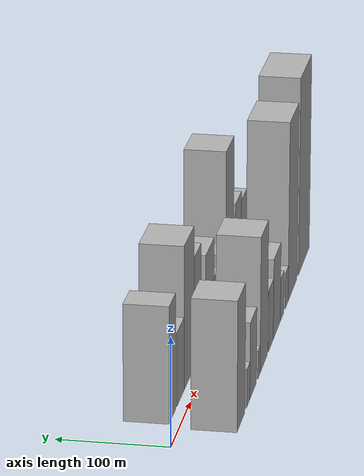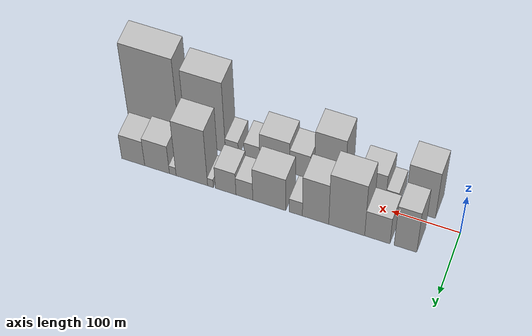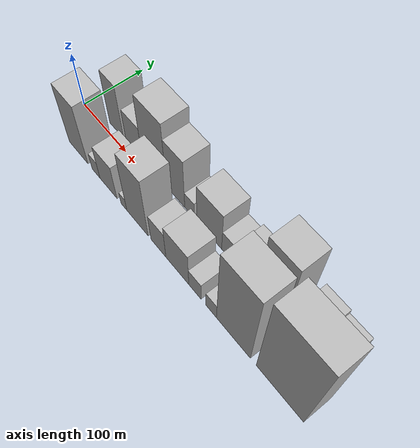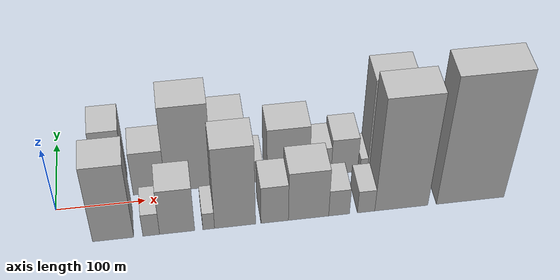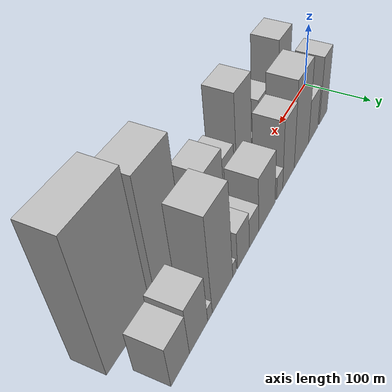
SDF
<sdf version="1.6">
 <world name="default">
  <scene>
   <sky><clouds><speed>12</speed></clouds></sky>
   <ambient>0.4 0.4 0.4 1</ambient>
   <background>0.7 0.7 0.7 1</background>
   <shadows>1</shadows>
  </scene>
  <gravity>0 0 -9.8066</gravity>
  <magnetic_field>6e-06 2.3e-05 -4.2e-05</magnetic_field>
  <physics default="0" name="default_physics" type="ode">
   <ode>
    <solver>
     <type>quick</type>
     <iters>10</iters>
     <sor>1.0</sor>
     <use_dynamic_moi_rescaling>0</use_dynamic_moi_rescaling>
    </solver>
    <constraints>
     <cfm>0</cfm>
     <erp>0.2</erp>
     <contact_max_correcting_vel>100</contact_max_correcting_vel>
     <contact_surface_layer>0.001</contact_surface_layer>
    </constraints>
   </ode>
   <max_step_size>0.004</max_step_size>
   <real_time_factor>1</real_time_factor>
   <real_time_update_rate>250</real_time_update_rate>
  </physics>
  <light name="sun" type="directional">
   <pose>0 0 10 0 0 0</pose>
   <diffuse>0.8 0.8 0.8 1</diffuse>
   <specular>0.2 0.2 0.2 1</specular>
   <attenuation>
    <range>1000</range>
    <constant>0.9</constant>
    <linear>0.01</linear>
    <quadratic>0.001</quadratic>
   </attenuation>
   <direction>-0.5 0.1 -0.9</direction>
  </light>
  <model name="building_1">
   <static>1</static>
   <pose>64.3956 30.0000 0 0.000000 0.000000 1.570796</pose>
   <link name="link">
    <pose>0 0 54.00 0 0 0</pose>
    <collision name="collision"><geometry><box><size>40.0000 32.7913 108.0000</size></box></geometry></collision>
    <visual name="visual">
     <cast_shadows>0</cast_shadows>
     <geometry><box><size>40.0000 32.7913 108.0000</size></box></geometry>
     <material>
      <script>
       <uri>model://HANNAS_wall/materials/scripts</uri>
       <uri>model://HANNAS_wall/materials/textures</uri>
       <name>vrc/HANNAS_wall</name>
      </script>
     </material>
    </visual>
   </link>
  </model>
  <model name="building_2">
   <static>1</static>
   <pose>105.2554 30.0000 0 0.000000 0.000000 1.570796</pose>
   <link name="link">
    <pose>0 0 34.50 0 0 0</pose>
    <collision name="collision"><geometry><box><size>40.0000 36.9283 69.0000</size></box></geometry></collision>
    <visual name="visual">
     <cast_shadows>0</cast_shadows>
     <geometry><box><size>40.0000 36.9283 69.0000</size></box></geometry>
     <material>
      <script>
       <uri>model://HANNAS_wall/materials/scripts</uri>
       <uri>model://HANNAS_wall/materials/textures</uri>
       <name>vrc/HANNAS_wall</name>
      </script>
     </material>
    </visual>
   </link>
  </model>
  <model name="building_3">
   <static>1</static>
   <pose>150.1064 30.0000 0 0.000000 0.000000 1.570796</pose>
   <link name="link">
    <pose>0 0 67.50 0 0 0</pose>
    <collision name="collision"><geometry><box><size>40.0000 52.7737 135.0000</size></box></geometry></collision>
    <visual name="visual">
     <cast_shadows>0</cast_shadows>
     <geometry><box><size>40.0000 52.7737 135.0000</size></box></geometry>
     <material>
      <script>
       <uri>model://HANNAS_wall/materials/scripts</uri>
       <uri>model://HANNAS_wall/materials/textures</uri>
       <name>vrc/HANNAS_wall</name>
      </script>
     </material>
    </visual>
   </link>
  </model>
  <model name="building_4">
   <static>1</static>
   <pose>195.9589 30.0000 0 0.000000 0.000000 1.570796</pose>
   <link name="link">
    <pose>0 0 52.50 0 0 0</pose>
    <collision name="collision"><geometry><box><size>40.0000 38.9315 105.0000</size></box></geometry></collision>
    <visual name="visual">
     <cast_shadows>0</cast_shadows>
     <geometry><box><size>40.0000 38.9315 105.0000</size></box></geometry>
     <material>
      <script>
       <uri>model://HANNAS_wall/materials/scripts</uri>
       <uri>model://HANNAS_wall/materials/textures</uri>
       <name>vrc/HANNAS_wall</name>
      </script>
     </material>
    </visual>
   </link>
  </model>
  <model name="building_5">
   <static>1</static>
   <pose>225.2437 30.0000 0 0.000000 0.000000 1.570796</pose>
   <link name="link">
    <pose>0 0 18.00 0 0 0</pose>
    <collision name="collision"><geometry><box><size>40.0000 19.6381 36.0000</size></box></geometry></collision>
    <visual name="visual">
     <cast_shadows>0</cast_shadows>
     <geometry><box><size>40.0000 19.6381 36.0000</size></box></geometry>
     <material>
      <script>
       <uri>model://HANNAS_wall/materials/scripts</uri>
       <uri>model://HANNAS_wall/materials/textures</uri>
       <name>vrc/HANNAS_wall</name>
      </script>
     </material>
    </visual>
   </link>
  </model>
  <model name="building_6">
   <static>1</static>
   <pose>264.6774 30.0000 0 0.000000 0.000000 1.570796</pose>
   <link name="link">
    <pose>0 0 42.00 0 0 0</pose>
    <collision name="collision"><geometry><box><size>40.0000 49.2292 84.0000</size></box></geometry></collision>
    <visual name="visual">
     <cast_shadows>0</cast_shadows>
     <geometry><box><size>40.0000 49.2292 84.0000</size></box></geometry>
     <material>
      <script>
       <uri>model://HANNAS_wall/materials/scripts</uri>
       <uri>model://HANNAS_wall/materials/textures</uri>
       <name>vrc/HANNAS_wall</name>
      </script>
     </material>
    </visual>
   </link>
  </model>
  <model name="building_7">
   <static>1</static>
   <pose>301.9560 30.0000 0 0.000000 0.000000 1.570796</pose>
   <link name="link">
    <pose>0 0 22.50 0 0 0</pose>
    <collision name="collision"><geometry><box><size>40.0000 25.3280 45.0000</size></box></geometry></collision>
    <visual name="visual">
     <cast_shadows>0</cast_shadows>
     <geometry><box><size>40.0000 25.3280 45.0000</size></box></geometry>
     <material>
      <script>
       <uri>model://HANNAS_wall/materials/scripts</uri>
       <uri>model://HANNAS_wall/materials/textures</uri>
       <name>vrc/HANNAS_wall</name>
      </script>
     </material>
    </visual>
   </link>
  </model>
  <model name="building_8">
   <static>1</static>
   <pose>330.1537 30.0000 0 0.000000 0.000000 1.570796</pose>
   <link name="link">
    <pose>0 0 28.50 0 0 0</pose>
    <collision name="collision"><geometry><box><size>40.0000 31.0674 57.0000</size></box></geometry></collision>
    <visual name="visual">
     <cast_shadows>0</cast_shadows>
     <geometry><box><size>40.0000 31.0674 57.0000</size></box></geometry>
     <material>
      <script>
       <uri>model://HANNAS_wall/materials/scripts</uri>
       <uri>model://HANNAS_wall/materials/textures</uri>
       <name>vrc/HANNAS_wall</name>
      </script>
     </material>
    </visual>
   </link>
  </model>
  <model name="building_9">
   <static>1</static>
   <pose>353.0845 30.0000 0 0.000000 0.000000 1.570796</pose>
   <link name="link">
    <pose>0 0 10.50 0 0 0</pose>
    <collision name="collision"><geometry><box><size>40.0000 8.7943 21.0000</size></box></geometry></collision>
    <visual name="visual">
     <cast_shadows>0</cast_shadows>
     <geometry><box><size>40.0000 8.7943 21.0000</size></box></geometry>
     <material>
      <script>
       <uri>model://HANNAS_wall/materials/scripts</uri>
       <uri>model://HANNAS_wall/materials/textures</uri>
       <name>vrc/HANNAS_wall</name>
      </script>
     </material>
    </visual>
   </link>
  </model>
  <model name="building_10">
   <static>1</static>
   <pose>381.4194 30.0000 0 0.000000 0.000000 1.570796</pose>
   <link name="link">
    <pose>0 0 72.00 0 0 0</pose>
    <collision name="collision"><geometry><box><size>40.0000 47.8754 144.0000</size></box></geometry></collision>
    <visual name="visual">
     <cast_shadows>0</cast_shadows>
     <geometry><box><size>40.0000 47.8754 144.0000</size></box></geometry>
     <material>
      <script>
       <uri>model://HANNAS_wall/materials/scripts</uri>
       <uri>model://HANNAS_wall/materials/textures</uri>
       <name>vrc/HANNAS_wall</name>
      </script>
     </material>
    </visual>
   </link>
  </model>
  <model name="building_11">
   <static>1</static>
   <pose>410.4542 30.0000 0 0.000000 0.000000 1.570796</pose>
   <link name="link">
    <pose>0 0 10.50 0 0 0</pose>
    <collision name="collision"><geometry><box><size>40.0000 10.1942 21.0000</size></box></geometry></collision>
    <visual name="visual">
     <cast_shadows>0</cast_shadows>
     <geometry><box><size>40.0000 10.1942 21.0000</size></box></geometry>
     <material>
      <script>
       <uri>model://HANNAS_wall/materials/scripts</uri>
       <uri>model://HANNAS_wall/materials/textures</uri>
       <name>vrc/HANNAS_wall</name>
      </script>
     </material>
    </visual>
   </link>
  </model>
  <model name="building_12">
   <static>1</static>
   <pose>434.4911 30.0000 0 0.000000 0.000000 1.570796</pose>
   <link name="link">
    <pose>0 0 36.00 0 0 0</pose>
    <collision name="collision"><geometry><box><size>40.0000 37.8795 72.0000</size></box></geometry></collision>
    <visual name="visual">
     <cast_shadows>0</cast_shadows>
     <geometry><box><size>40.0000 37.8795 72.0000</size></box></geometry>
     <material>
      <script>
       <uri>model://HANNAS_wall/materials/scripts</uri>
       <uri>model://HANNAS_wall/materials/textures</uri>
       <name>vrc/HANNAS_wall</name>
      </script>
     </material>
    </visual>
   </link>
  </model>
  <model name="building_13">
   <static>1</static>
   <pose>471.1069 30.0000 0 0.000000 0.000000 1.570796</pose>
   <link name="link">
    <pose>0 0 31.50 0 0 0</pose>
    <collision name="collision"><geometry><box><size>40.0000 35.3521 63.0000</size></box></geometry></collision>
    <visual name="visual">
     <cast_shadows>0</cast_shadows>
     <geometry><box><size>40.0000 35.3521 63.0000</size></box></geometry>
     <material>
      <script>
       <uri>model://HANNAS_wall/materials/scripts</uri>
       <uri>model://HANNAS_wall/materials/textures</uri>
       <name>vrc/HANNAS_wall</name>
      </script>
     </material>
    </visual>
   </link>
  </model>
  <model name="building_14">
   <static>1</static>
   <pose>62.3810 -30.0000 0 0.000000 0.000000 1.570796</pose>
   <link name="link">
    <pose>0 0 60.00 0 0 0</pose>
    <collision name="collision"><geometry><box><size>40.0000 44.7620 120.0000</size></box></geometry></collision>
    <visual name="visual">
     <cast_shadows>0</cast_shadows>
     <geometry><box><size>40.0000 44.7620 120.0000</size></box></geometry>
     <material>
      <script>
       <uri>model://HANNAS_wall/materials/scripts</uri>
       <uri>model://HANNAS_wall/materials/textures</uri>
       <name>vrc/HANNAS_wall</name>
      </script>
     </material>
    </visual>
   </link>
  </model>
  <model name="building_15">
   <static>1</static>
   <pose>103.9170 -30.0000 0 0.000000 0.000000 1.570796</pose>
   <link name="link">
    <pose>0 0 18.00 0 0 0</pose>
    <collision name="collision"><geometry><box><size>40.0000 18.3100 36.0000</size></box></geometry></collision>
    <visual name="visual">
     <cast_shadows>0</cast_shadows>
     <geometry><box><size>40.0000 18.3100 36.0000</size></box></geometry>
     <material>
      <script>
       <uri>model://HANNAS_wall/materials/scripts</uri>
       <uri>model://HANNAS_wall/materials/textures</uri>
       <name>vrc/HANNAS_wall</name>
      </script>
     </material>
    </visual>
   </link>
  </model>
  <model name="building_16">
   <static>1</static>
   <pose>132.3767 -30.0000 0 0.000000 0.000000 1.570796</pose>
   <link name="link">
    <pose>0 0 36.00 0 0 0</pose>
    <collision name="collision"><geometry><box><size>40.0000 38.6094 72.0000</size></box></geometry></collision>
    <visual name="visual">
     <cast_shadows>0</cast_shadows>
     <geometry><box><size>40.0000 38.6094 72.0000</size></box></geometry>
     <material>
      <script>
       <uri>model://HANNAS_wall/materials/scripts</uri>
       <uri>model://HANNAS_wall/materials/textures</uri>
       <name>vrc/HANNAS_wall</name>
      </script>
     </material>
    </visual>
   </link>
  </model>
  <model name="building_17">
   <static>1</static>
   <pose>167.1080 -30.0000 0 0.000000 0.000000 1.570796</pose>
   <link name="link">
    <pose>0 0 13.50 0 0 0</pose>
    <collision name="collision"><geometry><box><size>40.0000 12.8532 27.0000</size></box></geometry></collision>
    <visual name="visual">
     <cast_shadows>0</cast_shadows>
     <geometry><box><size>40.0000 12.8532 27.0000</size></box></geometry>
     <material>
      <script>
       <uri>model://HANNAS_wall/materials/scripts</uri>
       <uri>model://HANNAS_wall/materials/textures</uri>
       <name>vrc/HANNAS_wall</name>
      </script>
     </material>
    </visual>
   </link>
  </model>
  <model name="building_18">
   <static>1</static>
   <pose>196.3711 -30.0000 0 0.000000 0.000000 1.570796</pose>
   <link name="link">
    <pose>0 0 64.50 0 0 0</pose>
    <collision name="collision"><geometry><box><size>40.0000 45.6732 129.0000</size></box></geometry></collision>
    <visual name="visual">
     <cast_shadows>0</cast_shadows>
     <geometry><box><size>40.0000 45.6732 129.0000</size></box></geometry>
     <material>
      <script>
       <uri>model://HANNAS_wall/materials/scripts</uri>
       <uri>model://HANNAS_wall/materials/textures</uri>
       <name>vrc/HANNAS_wall</name>
      </script>
     </material>
    </visual>
   </link>
  </model>
  <model name="building_19">
   <static>1</static>
   <pose>240.5587 -30.0000 0 0.000000 0.000000 1.570796</pose>
   <link name="link">
    <pose>0 0 30.00 0 0 0</pose>
    <collision name="collision"><geometry><box><size>40.0000 30.7020 60.0000</size></box></geometry></collision>
    <visual name="visual">
     <cast_shadows>0</cast_shadows>
     <geometry><box><size>40.0000 30.7020 60.0000</size></box></geometry>
     <material>
      <script>
       <uri>model://HANNAS_wall/materials/scripts</uri>
       <uri>model://HANNAS_wall/materials/textures</uri>
       <name>vrc/HANNAS_wall</name>
      </script>
     </material>
    </visual>
   </link>
  </model>
  <model name="building_20">
   <static>1</static>
   <pose>278.6155 -30.0000 0 0.000000 0.000000 1.570796</pose>
   <link name="link">
    <pose>0 0 39.00 0 0 0</pose>
    <collision name="collision"><geometry><box><size>40.0000 45.4116 78.0000</size></box></geometry></collision>
    <visual name="visual">
     <cast_shadows>0</cast_shadows>
     <geometry><box><size>40.0000 45.4116 78.0000</size></box></geometry>
     <material>
      <script>
       <uri>model://HANNAS_wall/materials/scripts</uri>
       <uri>model://HANNAS_wall/materials/textures</uri>
       <name>vrc/HANNAS_wall</name>
      </script>
     </material>
    </visual>
   </link>
  </model>
  <model name="building_21">
   <static>1</static>
   <pose>313.0868 -30.0000 0 0.000000 0.000000 1.570796</pose>
   <link name="link">
    <pose>0 0 21.00 0 0 0</pose>
    <collision name="collision"><geometry><box><size>40.0000 23.5310 42.0000</size></box></geometry></collision>
    <visual name="visual">
     <cast_shadows>0</cast_shadows>
     <geometry><box><size>40.0000 23.5310 42.0000</size></box></geometry>
     <material>
      <script>
       <uri>model://HANNAS_wall/materials/scripts</uri>
       <uri>model://HANNAS_wall/materials/textures</uri>
       <name>vrc/HANNAS_wall</name>
      </script>
     </material>
    </visual>
   </link>
  </model>
  <model name="building_22">
   <static>1</static>
   <pose>343.7364 -30.0000 0 0.000000 0.000000 1.570796</pose>
   <link name="link">
    <pose>0 0 18.00 0 0 0</pose>
    <collision name="collision"><geometry><box><size>40.0000 19.7683 36.0000</size></box></geometry></collision>
    <visual name="visual">
     <cast_shadows>0</cast_shadows>
     <geometry><box><size>40.0000 19.7683 36.0000</size></box></geometry>
     <material>
      <script>
       <uri>model://HANNAS_wall/materials/scripts</uri>
       <uri>model://HANNAS_wall/materials/textures</uri>
       <name>vrc/HANNAS_wall</name>
      </script>
     </material>
    </visual>
   </link>
  </model>
  <model name="building_23">
   <static>1</static>
   <pose>384.0472 -30.0000 0 0.000000 0.000000 1.570796</pose>
   <link name="link">
    <pose>0 0 88.50 0 0 0</pose>
    <collision name="collision"><geometry><box><size>40.0000 60.8532 177.0000</size></box></geometry></collision>
    <visual name="visual">
     <cast_shadows>0</cast_shadows>
     <geometry><box><size>40.0000 60.8532 177.0000</size></box></geometry>
     <material>
      <script>
       <uri>model://HANNAS_wall/materials/scripts</uri>
       <uri>model://HANNAS_wall/materials/textures</uri>
       <name>vrc/HANNAS_wall</name>
      </script>
     </material>
    </visual>
   </link>
  </model>
  <model name="building_24">
   <static>1</static>
   <pose>463.6287 -30.0000 0 0.000000 0.000000 1.570796</pose>
   <link name="link">
    <pose>0 0 99.00 0 0 0</pose>
    <collision name="collision"><geometry><box><size>40.0000 78.3097 198.0000</size></box></geometry></collision>
    <visual name="visual">
     <cast_shadows>0</cast_shadows>
     <geometry><box><size>40.0000 78.3097 198.0000</size></box></geometry>
     <material>
      <script>
       <uri>model://HANNAS_wall/materials/scripts</uri>
       <uri>model://HANNAS_wall/materials/textures</uri>
       <name>vrc/HANNAS_wall</name>
      </script>
     </material>
    </visual>
   </link>
  </model>
 </world>
</sdf>
